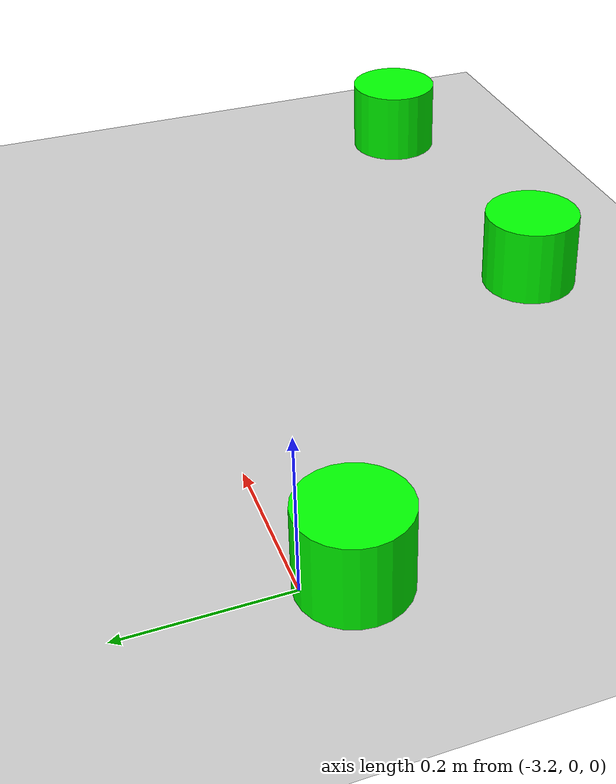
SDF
<sdf version="1.7">
 <world name="default">
  <model name="ground_plane">
   <static>1</static>
   <link name="link">
    <collision name="collision">
     <geometry><plane><normal>0 0 1</normal><size>100 100</size></plane></geometry>
     <surface>
      <contact><collide_bitmask>65535</collide_bitmask></contact>
      <friction><ode><mu>100</mu><mu2>50</mu2></ode></friction>
     </surface>
    </collision>
    <visual name="visual">
     <cast_shadows>0</cast_shadows>
     <geometry><plane><normal>0 0 1</normal><size>100 100</size></plane></geometry>
     <material>
      <script><uri>file://media/materials/scripts/gazebo.material</uri><name>Gazebo/Grey</name></script>
     </material>
    </visual>
   </link>
  </model>
  <model name="latinha_verde_clone_8_clone_2_clone_2_clone_27">
   <link name="link">
    <inertial>
     <mass>1</mass>
     <inertia><ixx>0.145833</ixx><ixy>0</ixy><ixz>0</ixz><iyy>0.145833</iyy><iyz>0</iyz><izz>0.125</izz></inertia>
    </inertial>
    <visual name="visual">
     <geometry><cylinder><radius>0.066</radius><length>0.114</length></cylinder></geometry>
     <material>
      <script><name>Gazebo/Gray</name><uri>file://media/materials/scripts/gazebo.material</uri></script>
      <shader type="pixel"><normal_map>__default__</normal_map></shader>
      <ambient>0 1 0 1</ambient>
      <diffuse>0 1 0 1</diffuse>
      <specular>0.1 0.1 0.1 1</specular>
      <emissive>0 0 0 1</emissive>
     </material>
    </visual>
    <collision name="collision">
     <geometry><cylinder><radius>0.05</radius><length>0.1</length></cylinder></geometry>
     <surface>
      <friction>
       <ode><mu>1</mu><mu2>1</mu2><fdir1>0 0 0</fdir1><slip1>0</slip1><slip2>0</slip2></ode>
       <torsional>
        <coefficient>1</coefficient>
        <patch_radius>0</patch_radius>
        <surface_radius>0</surface_radius>
        <use_patch_radius>1</use_patch_radius>
        <ode><slip>0</slip></ode>
       </torsional>
      </friction>
      <bounce><restitution_coefficient>0</restitution_coefficient><threshold>1e+06</threshold></bounce>
      <contact>
       <collide_without_contact>0</collide_without_contact>
       <collide_without_contact_bitmask>1</collide_without_contact_bitmask>
       <collide_bitmask>1</collide_bitmask>
       <ode>
        <soft_cfm>0</soft_cfm>
        <soft_erp>0.2</soft_erp>
        <kp>1e+13</kp>
        <kd>1</kd>
        <max_vel>0.01</max_vel>
        <min_depth>0</min_depth>
       </ode>
       <bullet>
        <split_impulse>1</split_impulse>
        <split_impulse_penetration_threshold>-0.01</split_impulse_penetration_threshold>
        <soft_cfm>0</soft_cfm>
        <soft_erp>0.2</soft_erp>
        <kp>1e+13</kp>
        <kd>1</kd>
       </bullet>
      </contact>
     </surface>
    </collision>
   </link>
   <static>0</static>
   <pose>-3.21068 -0.057406 0.05 0 -0 0.000118</pose>
  </model>
  <model name="latinha_verde_clone_8_clone_2_clone_2_clone_28">
   <link name="link">
    <inertial>
     <mass>1</mass>
     <inertia><ixx>0.145833</ixx><ixy>0</ixy><ixz>0</ixz><iyy>0.145833</iyy><iyz>0</iyz><izz>0.125</izz></inertia>
    </inertial>
    <visual name="visual">
     <geometry><cylinder><radius>0.066</radius><length>0.114</length></cylinder></geometry>
     <material>
      <script><name>Gazebo/Gray</name><uri>file://media/materials/scripts/gazebo.material</uri></script>
      <shader type="pixel"><normal_map>__default__</normal_map></shader>
      <ambient>0 1 0 1</ambient>
      <diffuse>0 1 0 1</diffuse>
      <specular>0.1 0.1 0.1 1</specular>
      <emissive>0 0 0 1</emissive>
     </material>
    </visual>
    <collision name="collision">
     <geometry><cylinder><radius>0.05</radius><length>0.1</length></cylinder></geometry>
     <surface>
      <friction>
       <ode><mu>1</mu><mu2>1</mu2><fdir1>0 0 0</fdir1><slip1>0</slip1><slip2>0</slip2></ode>
       <torsional>
        <coefficient>1</coefficient>
        <patch_radius>0</patch_radius>
        <surface_radius>0</surface_radius>
        <use_patch_radius>1</use_patch_radius>
        <ode><slip>0</slip></ode>
       </torsional>
      </friction>
      <bounce><restitution_coefficient>0</restitution_coefficient><threshold>1e+06</threshold></bounce>
      <contact>
       <collide_without_contact>0</collide_without_contact>
       <collide_without_contact_bitmask>1</collide_without_contact_bitmask>
       <collide_bitmask>1</collide_bitmask>
       <ode>
        <soft_cfm>0</soft_cfm>
        <soft_erp>0.2</soft_erp>
        <kp>1e+13</kp>
        <kd>1</kd>
        <max_vel>0.01</max_vel>
        <min_depth>0</min_depth>
       </ode>
       <bullet>
        <split_impulse>1</split_impulse>
        <split_impulse_penetration_threshold>-0.01</split_impulse_penetration_threshold>
        <soft_cfm>0</soft_cfm>
        <soft_erp>0.2</soft_erp>
        <kp>1e+13</kp>
        <kd>1</kd>
       </bullet>
      </contact>
     </surface>
    </collision>
   </link>
   <static>0</static>
   <pose>-2.73415 -0.502266 0.05 0 -0 0.000118</pose>
  </model>
  <model name="latinha_verde_clone_8_clone_2_clone_2_clone_29">
   <link name="link">
    <inertial>
     <mass>1</mass>
     <inertia><ixx>0.145833</ixx><ixy>0</ixy><ixz>0</ixz><iyy>0.145833</iyy><iyz>0</iyz><izz>0.125</izz></inertia>
    </inertial>
    <visual name="visual">
     <geometry><cylinder><radius>0.066</radius><length>0.114</length></cylinder></geometry>
     <material>
      <script><name>Gazebo/Gray</name><uri>file://media/materials/scripts/gazebo.material</uri></script>
      <shader type="pixel"><normal_map>__default__</normal_map></shader>
      <ambient>0 1 0 1</ambient>
      <diffuse>0 1 0 1</diffuse>
      <specular>0.1 0.1 0.1 1</specular>
      <emissive>0 0 0 1</emissive>
     </material>
    </visual>
    <collision name="collision">
     <geometry><cylinder><radius>0.05</radius><length>0.1</length></cylinder></geometry>
     <surface>
      <friction>
       <ode><mu>1</mu><mu2>1</mu2><fdir1>0 0 0</fdir1><slip1>0</slip1><slip2>0</slip2></ode>
       <torsional>
        <coefficient>1</coefficient>
        <patch_radius>0</patch_radius>
        <surface_radius>0</surface_radius>
        <use_patch_radius>1</use_patch_radius>
        <ode><slip>0</slip></ode>
       </torsional>
      </friction>
      <bounce><restitution_coefficient>0</restitution_coefficient><threshold>1e+06</threshold></bounce>
      <contact>
       <collide_without_contact>0</collide_without_contact>
       <collide_without_contact_bitmask>1</collide_without_contact_bitmask>
       <collide_bitmask>1</collide_bitmask>
       <ode>
        <soft_cfm>0</soft_cfm>
        <soft_erp>0.2</soft_erp>
        <kp>1e+13</kp>
        <kd>1</kd>
        <max_vel>0.01</max_vel>
        <min_depth>0</min_depth>
       </ode>
       <bullet>
        <split_impulse>1</split_impulse>
        <split_impulse_penetration_threshold>-0.01</split_impulse_penetration_threshold>
        <soft_cfm>0</soft_cfm>
        <soft_erp>0.2</soft_erp>
        <kp>1e+13</kp>
        <kd>1</kd>
       </bullet>
      </contact>
     </surface>
    </collision>
   </link>
   <static>0</static>
   <pose>-2.25238 -0.490239 0.05 0 -0 0.000118</pose>
  </model>
 </world>
</sdf>
